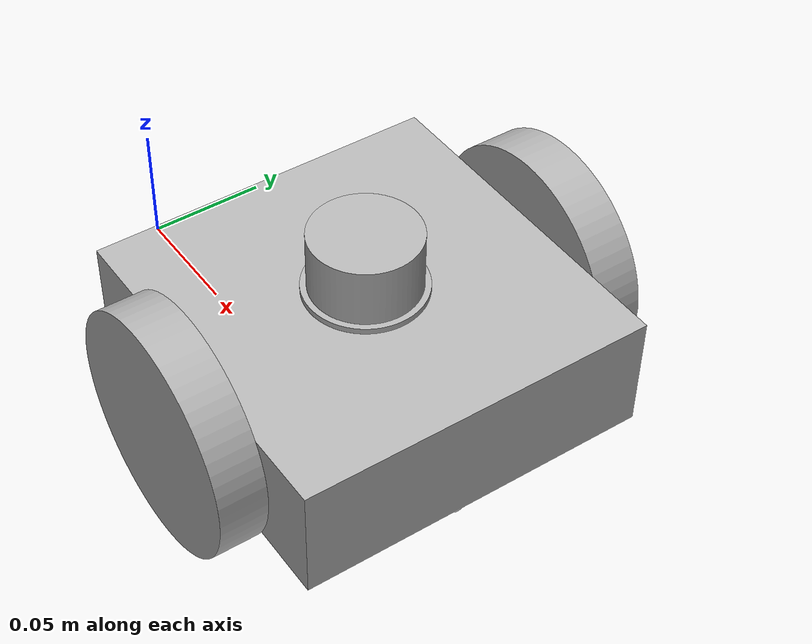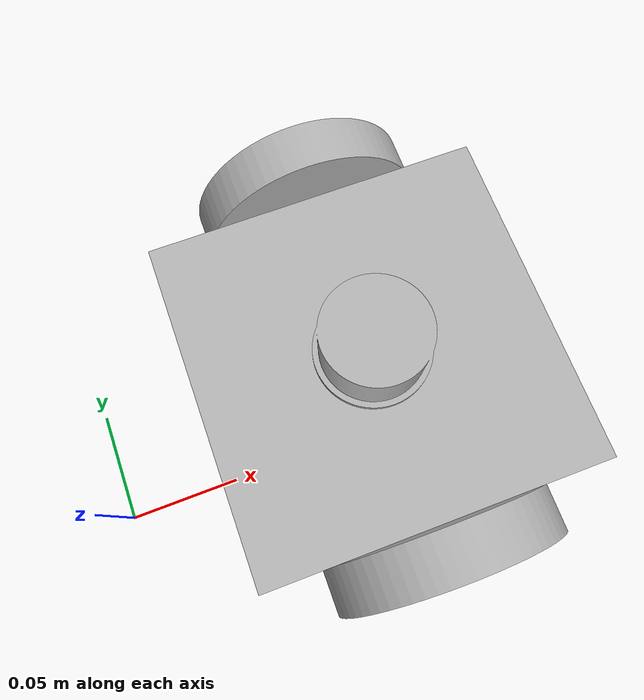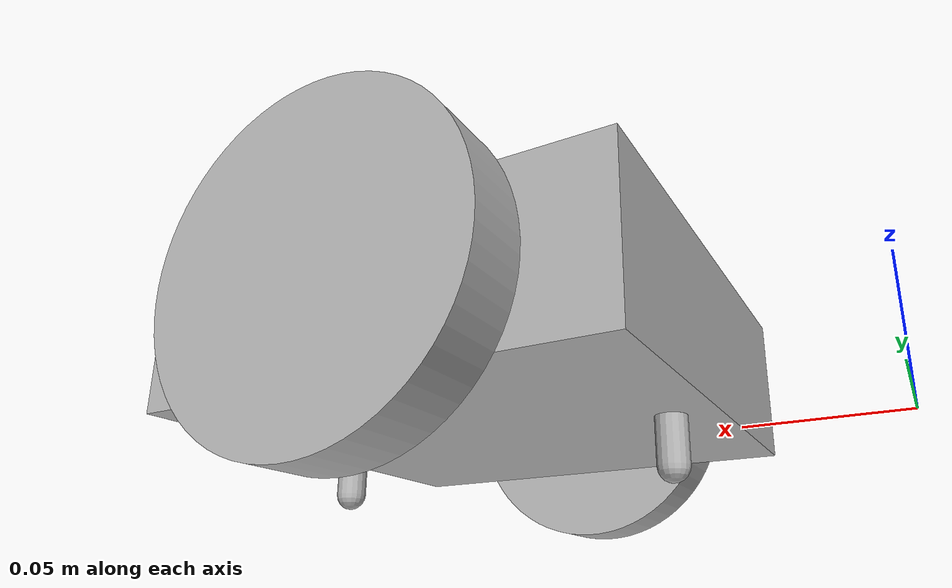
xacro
<?xml version="1.0" ?>
<robot name="Assembly_in_same_file" xmlns:xacro="http://www.ros.org/wiki/xacro">

<xacro:include filename="$(find Assembly_in_same_file_description)/urdf/materials.xacro" />
<xacro:include filename="$(find Assembly_in_same_file_description)/urdf/Assembly_in_same_file.trans" />
<xacro:include filename="$(find Assembly_in_same_file_description)/urdf/Assembly_in_same_file.gazebo" />
<link name="base_link">
  <inertial>
    <origin rpy="0 0 0" xyz="0.12500000000000003 0.02499999999999856 0.024912666207651243"/>
    <mass value="8.85385637713646"/>
    <inertia ixx="0.018426" ixy="0.0" ixz="0.0" iyy="0.018507" iyz="-0.0" izz="0.033199"/>
  </inertial>
  <visual>
    <origin rpy="0 0 0" xyz="0 0 0"/>
    <geometry>
      <mesh filename="package://Assembly_in_same_file_description/meshes/base_link.stl" scale="0.001 0.001 0.001"/>
    </geometry>
    <material name="silver"/>
  </visual>
  <collision>
    <origin rpy="0 0 0" xyz="0 0 0"/>
    <geometry>
      <mesh filename="package://Assembly_in_same_file_description/meshes/base_link.stl" scale="0.001 0.001 0.001"/>
    </geometry>
  </collision>
</link>

<link name="right_wheel_1">
  <inertial>
    <origin rpy="0 0 0" xyz="5.551115123125783e-17 -0.009999999999999988 2.42861286636753e-17"/>
    <mass value="1.2330751165339935"/>
    <inertia ixx="0.000812" ixy="-0.0" ixz="0.0" iyy="0.001541" iyz="0.0" izz="0.000812"/>
  </inertial>
  <visual>
    <origin rpy="0 0 0" xyz="-0.125 0.05 -0.025"/>
    <geometry>
      <mesh filename="package://Assembly_in_same_file_description/meshes/right_wheel_1.stl" scale="0.001 0.001 0.001"/>
    </geometry>
    <material name="silver"/>
  </visual>
  <collision>
    <origin rpy="0 0 0" xyz="-0.125 0.05 -0.025"/>
    <geometry>
      <mesh filename="package://Assembly_in_same_file_description/meshes/right_wheel_1.stl" scale="0.001 0.001 0.001"/>
    </geometry>
  </collision>
</link>

<link name="left_wheel_1">
  <inertial>
    <origin rpy="0 0 0" xyz="8.326672684688674e-17 0.009999999999999995 3.469446951953614e-17"/>
    <mass value="1.2330751165339937"/>
    <inertia ixx="0.000812" ixy="-0.0" ixz="0.0" iyy="0.001541" iyz="0.0" izz="0.000812"/>
  </inertial>
  <visual>
    <origin rpy="0 0 0" xyz="-0.125 -0.1 -0.025"/>
    <geometry>
      <mesh filename="package://Assembly_in_same_file_description/meshes/left_wheel_1.stl" scale="0.001 0.001 0.001"/>
    </geometry>
    <material name="silver"/>
  </visual>
  <collision>
    <origin rpy="0 0 0" xyz="-0.125 -0.1 -0.025"/>
    <geometry>
      <mesh filename="package://Assembly_in_same_file_description/meshes/left_wheel_1.stl" scale="0.001 0.001 0.001"/>
    </geometry>
  </collision>
</link>

<link name="lidar_1">
  <inertial>
    <origin rpy="0 0 0" xyz="5.551115123125783e-17 1.0408340855860843e-17 0.013489010989011008"/>
    <mass value="0.35065573626435437"/>
    <inertia ixx="6.8e-05" ixy="0.0" ixz="0.0" iyy="6.8e-05" iyz="-0.0" izz="9.1e-05"/>
  </inertial>
  <visual>
    <origin rpy="0 0 0" xyz="-0.125 -0.025 -0.05"/>
    <geometry>
      <mesh filename="package://Assembly_in_same_file_description/meshes/lidar_1.stl" scale="0.001 0.001 0.001"/>
    </geometry>
    <material name="silver"/>
  </visual>
  <collision>
    <origin rpy="0 0 0" xyz="-0.125 -0.025 -0.05"/>
    <geometry>
      <mesh filename="package://Assembly_in_same_file_description/meshes/lidar_1.stl" scale="0.001 0.001 0.001"/>
    </geometry>
  </collision>
</link>

<joint name="right_wheel" type="continuous">
  <origin rpy="0 0 0" xyz="0.125 -0.05 0.025"/>
  <parent link="base_link"/>
  <child link="right_wheel_1"/>
  <axis xyz="-0.0 -1.0 0.0"/>
</joint>

<joint name="left_wheel" type="continuous">
  <origin rpy="0 0 0" xyz="0.125 0.1 0.025"/>
  <parent link="base_link"/>
  <child link="left_wheel_1"/>
  <axis xyz="0.0 1.0 0.0"/>
</joint>

<joint name="lidar" type="fixed">
  <origin rpy="0 0 0" xyz="0.125 0.025 0.05"/>
  <parent link="base_link"/>
  <child link="lidar_1"/>
</joint>

</robot>

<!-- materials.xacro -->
<robot name="Assembly_in_same_file" xmlns:xacro="http://www.ros.org/wiki/xacro" >

<material name="silver">
  <color rgba="0.700 0.700 0.700 1.000"/>
</material>

</robot>

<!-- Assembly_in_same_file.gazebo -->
<robot name="Assembly_in_same_file" xmlns:xacro="http://www.ros.org/wiki/xacro" >

<xacro:property name="body_color" value="Gazebo/Silver" />

<gazebo>
  <plugin filename="libgazebo_ros_control.so" name="control"/>
</gazebo>
<gazebo reference="base_link">
  <material>${body_color}</material>
  <mu1>0.2</mu1>
  <mu2>0.2</mu2>
  <selfCollide>true</selfCollide>
  <gravity>true</gravity>
</gazebo>

<gazebo reference="right_wheel_1">
  <material>${body_color}</material>
  <mu1>0.2</mu1>
  <mu2>0.2</mu2>
  <selfCollide>true</selfCollide>
</gazebo>

<gazebo reference="left_wheel_1">
  <material>${body_color}</material>
  <mu1>0.2</mu1>
  <mu2>0.2</mu2>
  <selfCollide>true</selfCollide>
</gazebo>

<gazebo reference="lidar_1">
  <material>${body_color}</material>
  <mu1>0.2</mu1>
  <mu2>0.2</mu2>
  <selfCollide>true</selfCollide>
</gazebo>

</robot>
